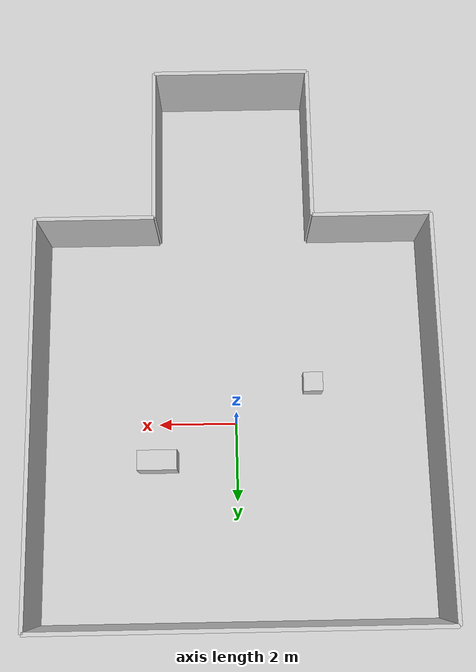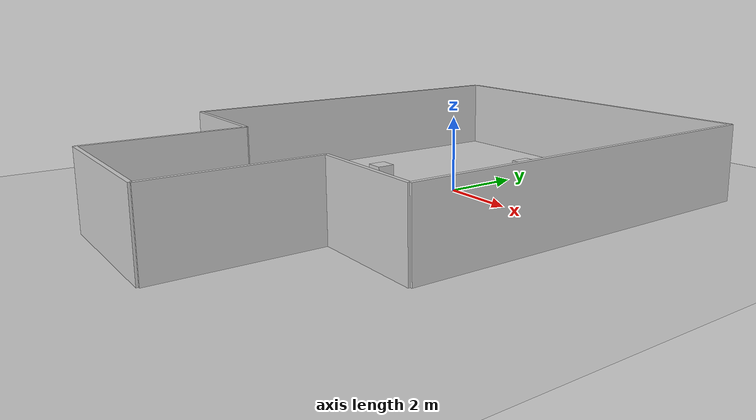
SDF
<sdf version="1.6">
 <world name="apartment_world">
  <light name="sun" type="directional">
   <pose>0 0 10 0 -0.5 0</pose>
   <diffuse>1 1 1 1</diffuse>
   <direction>-0.5 0.5 -1</direction>
  </light>
  <model name="ground_plane">
   <static>true</static>
   <link name="ground_link">
    <collision name="ground_collision">
     <geometry><plane><normal>0 0 1</normal><size>20 20</size></plane></geometry>
    </collision>
    <visual name="ground_visual">
     <geometry><plane><normal>0 0 1</normal><size>20 20</size></plane></geometry>
     <material><ambient>0.4 0.4 0.4 1</ambient><diffuse>0.8 0.8 0.8 1</diffuse></material>
    </visual>
   </link>
  </model>
  <model name="wall_north">
   <static>true</static>
   <pose>0 5 1 0 0 0</pose>
   <link name="link">
    <collision name="collision"><geometry><box><size>10 0.1 2</size></box></geometry></collision>
    <visual name="visual">
     <geometry><box><size>10 0.1 2</size></box></geometry>
     <material><ambient>0.4 0.4 0.4 1</ambient><diffuse>0.8 0.8 0.8 1</diffuse></material>
    </visual>
   </link>
  </model>
  <model name="wall_east">
   <static>true</static>
   <pose>5 0 1 0 0 0</pose>
   <link name="link">
    <collision name="collision"><geometry><box><size>0.1 10 2</size></box></geometry></collision>
    <visual name="visual">
     <geometry><box><size>0.1 10 2</size></box></geometry>
     <material><ambient>0.4 0.4 0.4 1</ambient><diffuse>0.8 0.8 0.8 1</diffuse></material>
    </visual>
   </link>
  </model>
  <model name="wall_west">
   <static>true</static>
   <pose>-5 0 1 0 0 0</pose>
   <link name="link">
    <collision name="collision"><geometry><box><size>0.1 10 2</size></box></geometry></collision>
    <visual name="visual">
     <geometry><box><size>0.1 10 2</size></box></geometry>
     <material><ambient>0.4 0.4 0.4 1</ambient><diffuse>0.8 0.8 0.8 1</diffuse></material>
    </visual>
   </link>
  </model>
  <model name="wall_south_left">
   <static>true</static>
   <pose>-3.5 -5 1 0 0 0</pose>
   <link name="link">
    <collision name="collision"><geometry><box><size>3 0.1 2</size></box></geometry></collision>
    <visual name="visual">
     <geometry><box><size>3 0.1 2</size></box></geometry>
     <material><ambient>0.4 0.4 0.4 1</ambient><diffuse>0.8 0.8 0.8 1</diffuse></material>
    </visual>
   </link>
  </model>
  <model name="wall_south_right">
   <static>true</static>
   <pose>3.5 -5 1 0 0 0</pose>
   <link name="link">
    <collision name="collision"><geometry><box><size>3 0.1 2</size></box></geometry></collision>
    <visual name="visual">
     <geometry><box><size>3 0.1 2</size></box></geometry>
     <material><ambient>0.4 0.4 0.4 1</ambient><diffuse>0.8 0.8 0.8 1</diffuse></material>
    </visual>
   </link>
  </model>
  <model name="corridor_wall_left">
   <static>true</static>
   <pose>-2 -7 1 0 0 0</pose>
   <link name="link">
    <collision name="collision"><geometry><box><size>0.1 4 2</size></box></geometry></collision>
    <visual name="visual">
     <geometry><box><size>0.1 4 2</size></box></geometry>
     <material><ambient>0.4 0.4 0.4 1</ambient><diffuse>0.8 0.8 0.8 1</diffuse></material>
    </visual>
   </link>
  </model>
  <model name="corridor_wall_right">
   <static>true</static>
   <pose>2 -7 1 0 0 0</pose>
   <link name="link">
    <collision name="collision"><geometry><box><size>0.1 4 2</size></box></geometry></collision>
    <visual name="visual">
     <geometry><box><size>0.1 4 2</size></box></geometry>
     <material><ambient>0.4 0.4 0.4 1</ambient><diffuse>0.8 0.8 0.8 1</diffuse></material>
    </visual>
   </link>
  </model>
  <model name="corridor_end">
   <static>true</static>
   <pose>0 -9 1 0 0 0</pose>
   <link name="link">
    <collision name="collision"><geometry><box><size>4 0.1 2</size></box></geometry></collision>
    <visual name="visual">
     <geometry><box><size>4 0.1 2</size></box></geometry>
     <material><ambient>0.4 0.4 0.4 1</ambient><diffuse>0.8 0.8 0.8 1</diffuse></material>
    </visual>
   </link>
  </model>
  <model name="table">
   <static>true</static>
   <pose>2 1 0.5 0 0 0</pose>
   <link name="link">
    <collision name="collision"><geometry><box><size>1 0.5 1</size></box></geometry></collision>
    <visual name="visual">
     <geometry><box><size>1 0.5 1</size></box></geometry>
     <material><ambient>0.4 0.4 0.4 1</ambient><diffuse>0.8 0.8 0.8 1</diffuse></material>
    </visual>
   </link>
  </model>
  <model name="box">
   <static>true</static>
   <pose>-2 -1 0.25 0 0 0</pose>
   <link name="link">
    <collision name="collision"><geometry><box><size>0.5 0.5 0.5</size></box></geometry></collision>
    <visual name="visual">
     <geometry><box><size>0.5 0.5 0.5</size></box></geometry>
     <material><ambient>0.4 0.4 0.4 1</ambient><diffuse>0.8 0.8 0.8 1</diffuse></material>
    </visual>
   </link>
  </model>
 </world>
</sdf>
